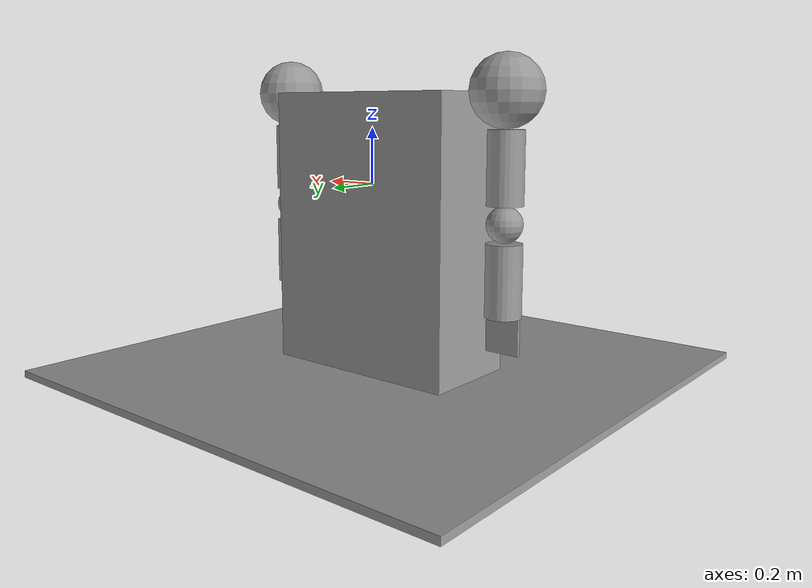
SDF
<?xml version='1.0'?>
<sdf version='1.6'>
  <model name='ryan_arms'>
    <link name='link_31'>
      <inertial>
        <mass>100</mass>
        <inertia>
          <ixx>16.6667</ixx>
          <ixy>0</ixy>
          <ixz>0</ixz>
          <iyy>16.6667</iyy>
          <iyz>0</iyz>
          <izz>16.6667</izz>
        </inertia>
        <pose frame=''>0 0 0 0 -0 0</pose>
      </inertial>
      <pose frame=''>-0.391114 0.378827 -0.495833 0 -0 0</pose>
      <gravity>1</gravity>
      <self_collide>0</self_collide>
      <kinematic>0</kinematic>
      <enable_wind>0</enable_wind>
      <visual name='visual'>
        <pose frame=''>0 0 0 0 -0 0</pose>
        <geometry>
          <box>
            <size>1.5 1.5 0.02</size>
          </box>
        </geometry>
        <material>
          <lighting>1</lighting>
          <script>
            <uri>file://media/materials/scripts/gazebo.material</uri>
            <name>Gazebo/Grey</name>
          </script>
          <shader type='pixel'>
            <normal_map>__default__</normal_map>
          </shader>
          <ambient>0.3 0.3 0.3 1</ambient>
          <diffuse>0.7 0.7 0.7 1</diffuse>
          <specular>0.01 0.01 0.01 1</specular>
          <emissive>0 0 0 1</emissive>
        </material>
        <transparency>0</transparency>
        <cast_shadows>1</cast_shadows>
      </visual>
      <collision name='collision'>
        <laser_retro>0</laser_retro>
        <max_contacts>10</max_contacts>
        <pose frame=''>0 0 0 0 -0 0</pose>
        <geometry>
          <box>
            <size>1.5 1.5 0.02</size>
          </box>
        </geometry>
        <surface>
          <friction>
            <ode>
              <mu>1</mu>
              <mu2>1</mu2>
              <fdir1>0 0 0</fdir1>
              <slip1>0</slip1>
              <slip2>0</slip2>
            </ode>
            <torsional>
              <coefficient>1</coefficient>
              <patch_radius>0</patch_radius>
              <surface_radius>0</surface_radius>
              <use_patch_radius>1</use_patch_radius>
              <ode>
                <slip>0</slip>
              </ode>
            </torsional>
          </friction>
          <bounce>
            <restitution_coefficient>0</restitution_coefficient>
            <threshold>1e+06</threshold>
          </bounce>
          <contact>
            <collide_without_contact>0</collide_without_contact>
            <collide_without_contact_bitmask>1</collide_without_contact_bitmask>
            <collide_bitmask>1</collide_bitmask>
            <ode>
              <soft_cfm>0</soft_cfm>
              <soft_erp>0.2</soft_erp>
              <kp>1e+13</kp>
              <kd>1</kd>
              <max_vel>0.01</max_vel>
              <min_depth>0</min_depth>
            </ode>
            <bullet>
              <split_impulse>1</split_impulse>
              <split_impulse_penetration_threshold>-0.01</split_impulse_penetration_threshold>
              <soft_cfm>0</soft_cfm>
              <soft_erp>0.2</soft_erp>
              <kp>1e+13</kp>
              <kd>1</kd>
            </bullet>
          </contact>
        </surface>
      </collision>
    </link>
    <link name='link_32'>
      <inertial>
        <mass>1</mass>
        <inertia>
          <ixx>0.166667</ixx>
          <ixy>0</ixy>
          <ixz>0</ixz>
          <iyy>0.166667</iyy>
          <iyz>0</iyz>
          <izz>0.166667</izz>
        </inertia>
        <pose frame=''>0 0 0 0 -0 0</pose>
      </inertial>
      <pose frame=''>-0.391114 0.378827 -0.085833 0 -0 0</pose>
      <gravity>1</gravity>
      <self_collide>0</self_collide>
      <kinematic>0</kinematic>
      <enable_wind>0</enable_wind>
      <visual name='visual'>
        <pose frame=''>0 0 0 0 -0 0</pose>
        <geometry>
          <box>
            <size>0.6 0.3 0.8</size>
          </box>
        </geometry>
        <material>
          <lighting>1</lighting>
          <script>
            <uri>file://media/materials/scripts/gazebo.material</uri>
            <name>Gazebo/Grey</name>
          </script>
          <shader type='pixel'>
            <normal_map>__default__</normal_map>
          </shader>
          <ambient>0.3 0.3 0.3 1</ambient>
          <diffuse>0.7 0.7 0.7 1</diffuse>
          <specular>0.01 0.01 0.01 1</specular>
          <emissive>0 0 0 1</emissive>
        </material>
        <transparency>0</transparency>
        <cast_shadows>1</cast_shadows>
      </visual>
      <collision name='collision'>
        <laser_retro>0</laser_retro>
        <max_contacts>10</max_contacts>
        <pose frame=''>0 0 0 0 -0 0</pose>
        <geometry>
          <box>
            <size>0.6 0.3 0.8</size>
          </box>
        </geometry>
        <surface>
          <friction>
            <ode>
              <mu>1</mu>
              <mu2>1</mu2>
              <fdir1>0 0 0</fdir1>
              <slip1>0</slip1>
              <slip2>0</slip2>
            </ode>
            <torsional>
              <coefficient>1</coefficient>
              <patch_radius>0</patch_radius>
              <surface_radius>0</surface_radius>
              <use_patch_radius>1</use_patch_radius>
              <ode>
                <slip>0</slip>
              </ode>
            </torsional>
          </friction>
          <bounce>
            <restitution_coefficient>0</restitution_coefficient>
            <threshold>1e+06</threshold>
          </bounce>
          <contact>
            <collide_without_contact>0</collide_without_contact>
            <collide_without_contact_bitmask>1</collide_without_contact_bitmask>
            <collide_bitmask>1</collide_bitmask>
            <ode>
              <soft_cfm>0</soft_cfm>
              <soft_erp>0.2</soft_erp>
              <kp>1e+13</kp>
              <kd>1</kd>
              <max_vel>0.01</max_vel>
              <min_depth>0</min_depth>
            </ode>
            <bullet>
              <split_impulse>1</split_impulse>
              <split_impulse_penetration_threshold>-0.01</split_impulse_penetration_threshold>
              <soft_cfm>0</soft_cfm>
              <soft_erp>0.2</soft_erp>
              <kp>1e+13</kp>
              <kd>1</kd>
            </bullet>
          </contact>
        </surface>
      </collision>
    </link>
    <link name='link_33'>
      <inertial>
        <mass>1</mass>
        <inertia>
          <ixx>0.1</ixx>
          <ixy>0</ixy>
          <ixz>0</ixz>
          <iyy>0.1</iyy>
          <iyz>0</iyz>
          <izz>0.1</izz>
        </inertia>
        <pose frame=''>0 0 0 0 -0 0</pose>
      </inertial>
      <pose frame=''>0.008886 0.378827 0.314167 0 -0 0</pose>
      <gravity>1</gravity>
      <self_collide>0</self_collide>
      <kinematic>0</kinematic>
      <enable_wind>0</enable_wind>
      <visual name='visual'>
        <pose frame=''>0 0 0 0 -0 0</pose>
        <geometry>
          <sphere>
            <radius>0.1</radius>
          </sphere>
        </geometry>
        <material>
          <lighting>1</lighting>
          <script>
            <uri>file://media/materials/scripts/gazebo.material</uri>
            <name>Gazebo/Grey</name>
          </script>
          <shader type='pixel'>
            <normal_map>__default__</normal_map>
          </shader>
          <ambient>0.3 0.3 0.3 1</ambient>
          <diffuse>0.7 0.7 0.7 1</diffuse>
          <specular>0.01 0.01 0.01 1</specular>
          <emissive>0 0 0 1</emissive>
        </material>
        <transparency>0</transparency>
        <cast_shadows>1</cast_shadows>
      </visual>
      <collision name='collision'>
        <laser_retro>0</laser_retro>
        <max_contacts>10</max_contacts>
        <pose frame=''>0 0 0 0 -0 0</pose>
        <geometry>
          <sphere>
            <radius>0.1</radius>
          </sphere>
        </geometry>
        <surface>
          <friction>
            <ode>
              <mu>1</mu>
              <mu2>1</mu2>
              <fdir1>0 0 0</fdir1>
              <slip1>0</slip1>
              <slip2>0</slip2>
            </ode>
            <torsional>
              <coefficient>1</coefficient>
              <patch_radius>0</patch_radius>
              <surface_radius>0</surface_radius>
              <use_patch_radius>1</use_patch_radius>
              <ode>
                <slip>0</slip>
              </ode>
            </torsional>
          </friction>
          <bounce>
            <restitution_coefficient>0</restitution_coefficient>
            <threshold>1e+06</threshold>
          </bounce>
          <contact>
            <collide_without_contact>0</collide_without_contact>
            <collide_without_contact_bitmask>1</collide_without_contact_bitmask>
            <collide_bitmask>1</collide_bitmask>
            <ode>
              <soft_cfm>0</soft_cfm>
              <soft_erp>0.2</soft_erp>
              <kp>1e+13</kp>
              <kd>1</kd>
              <max_vel>0.01</max_vel>
              <min_depth>0</min_depth>
            </ode>
            <bullet>
              <split_impulse>1</split_impulse>
              <split_impulse_penetration_threshold>-0.01</split_impulse_penetration_threshold>
              <soft_cfm>0</soft_cfm>
              <soft_erp>0.2</soft_erp>
              <kp>1e+13</kp>
              <kd>1</kd>
            </bullet>
          </contact>
        </surface>
      </collision>
    </link>
    <link name='link_33_clone'>
      <inertial>
        <mass>1</mass>
        <inertia>
          <ixx>0.1</ixx>
          <ixy>0</ixy>
          <ixz>0</ixz>
          <iyy>0.1</iyy>
          <iyz>0</iyz>
          <izz>0.1</izz>
        </inertia>
        <pose frame=''>0 0 0 0 -0 0</pose>
      </inertial>
      <pose frame=''>-0.791114 0.378827 0.314167 0 -0 0</pose>
      <gravity>1</gravity>
      <self_collide>0</self_collide>
      <kinematic>0</kinematic>
      <enable_wind>0</enable_wind>
      <visual name='visual'>
        <pose frame=''>0 0 0 0 -0 0</pose>
        <geometry>
          <sphere>
            <radius>0.1</radius>
          </sphere>
        </geometry>
        <material>
          <lighting>1</lighting>
          <script>
            <uri>file://media/materials/scripts/gazebo.material</uri>
            <name>Gazebo/Grey</name>
          </script>
          <shader type='pixel'>
            <normal_map>__default__</normal_map>
          </shader>
          <ambient>0.3 0.3 0.3 1</ambient>
          <diffuse>0.7 0.7 0.7 1</diffuse>
          <specular>0.01 0.01 0.01 1</specular>
          <emissive>0 0 0 1</emissive>
        </material>
        <transparency>0</transparency>
        <cast_shadows>1</cast_shadows>
      </visual>
      <collision name='collision'>
        <laser_retro>0</laser_retro>
        <max_contacts>10</max_contacts>
        <pose frame=''>0 0 0 0 -0 0</pose>
        <geometry>
          <sphere>
            <radius>0.1</radius>
          </sphere>
        </geometry>
        <surface>
          <friction>
            <ode>
              <mu>1</mu>
              <mu2>1</mu2>
              <fdir1>0 0 0</fdir1>
              <slip1>0</slip1>
              <slip2>0</slip2>
            </ode>
            <torsional>
              <coefficient>1</coefficient>
              <patch_radius>0</patch_radius>
              <surface_radius>0</surface_radius>
              <use_patch_radius>1</use_patch_radius>
              <ode>
                <slip>0</slip>
              </ode>
            </torsional>
          </friction>
          <bounce>
            <restitution_coefficient>0</restitution_coefficient>
            <threshold>1e+06</threshold>
          </bounce>
          <contact>
            <collide_without_contact>0</collide_without_contact>
            <collide_without_contact_bitmask>1</collide_without_contact_bitmask>
            <collide_bitmask>1</collide_bitmask>
            <ode>
              <soft_cfm>0</soft_cfm>
              <soft_erp>0.2</soft_erp>
              <kp>1e+13</kp>
              <kd>1</kd>
              <max_vel>0.01</max_vel>
              <min_depth>0</min_depth>
            </ode>
            <bullet>
              <split_impulse>1</split_impulse>
              <split_impulse_penetration_threshold>-0.01</split_impulse_penetration_threshold>
              <soft_cfm>0</soft_cfm>
              <soft_erp>0.2</soft_erp>
              <kp>1e+13</kp>
              <kd>1</kd>
            </bullet>
          </contact>
        </surface>
      </collision>
    </link>
    <link name='link_34'>
      <inertial>
        <mass>1</mass>
        <inertia>
          <ixx>0.145833</ixx>
          <ixy>0</ixy>
          <ixz>0</ixz>
          <iyy>0.145833</iyy>
          <iyz>0</iyz>
          <izz>0.125</izz>
        </inertia>
        <pose frame=''>0 0 0 0 -0 0</pose>
      </inertial>
      <pose frame=''>0.008886 0.378827 0.314167 0 -0 0</pose>
      <gravity>1</gravity>
      <self_collide>0</self_collide>
      <kinematic>0</kinematic>
      <enable_wind>0</enable_wind>
      <visual name='visual'>
        <pose frame=''>0 0 -0.2 0 -0 0</pose>
        <geometry>
          <cylinder>
            <radius>0.05</radius>
            <length>0.2</length>
          </cylinder>
        </geometry>
        <material>
          <lighting>1</lighting>
          <script>
            <uri>file://media/materials/scripts/gazebo.material</uri>
            <name>Gazebo/Grey</name>
          </script>
          <shader type='pixel'>
            <normal_map>__default__</normal_map>
          </shader>
          <ambient>0.3 0.3 0.3 1</ambient>
          <diffuse>0.7 0.7 0.7 1</diffuse>
          <specular>0.01 0.01 0.01 1</specular>
          <emissive>0 0 0 1</emissive>
        </material>
        <transparency>0</transparency>
        <cast_shadows>1</cast_shadows>
      </visual>
      <collision name='collision'>
        <laser_retro>0</laser_retro>
        <max_contacts>10</max_contacts>
        <pose frame=''>0 0 -0.2 0 -0 0</pose>
        <geometry>
          <cylinder>
            <radius>0.05</radius>
            <length>0.2</length>
          </cylinder>
        </geometry>
        <surface>
          <friction>
            <ode>
              <mu>1</mu>
              <mu2>1</mu2>
              <fdir1>0 0 0</fdir1>
              <slip1>0</slip1>
              <slip2>0</slip2>
            </ode>
            <torsional>
              <coefficient>1</coefficient>
              <patch_radius>0</patch_radius>
              <surface_radius>0</surface_radius>
              <use_patch_radius>1</use_patch_radius>
              <ode>
                <slip>0</slip>
              </ode>
            </torsional>
          </friction>
          <bounce>
            <restitution_coefficient>0</restitution_coefficient>
            <threshold>1e+06</threshold>
          </bounce>
          <contact>
            <collide_without_contact>0</collide_without_contact>
            <collide_without_contact_bitmask>1</collide_without_contact_bitmask>
            <collide_bitmask>1</collide_bitmask>
            <ode>
              <soft_cfm>0</soft_cfm>
              <soft_erp>0.2</soft_erp>
              <kp>1e+13</kp>
              <kd>1</kd>
              <max_vel>0.01</max_vel>
              <min_depth>0</min_depth>
            </ode>
            <bullet>
              <split_impulse>1</split_impulse>
              <split_impulse_penetration_threshold>-0.01</split_impulse_penetration_threshold>
              <soft_cfm>0</soft_cfm>
              <soft_erp>0.2</soft_erp>
              <kp>1e+13</kp>
              <kd>1</kd>
            </bullet>
          </contact>
        </surface>
      </collision>
    </link>
    <link name='link_34_clone'>
      <inertial>
        <mass>1</mass>
        <inertia>
          <ixx>0.145833</ixx>
          <ixy>0</ixy>
          <ixz>0</ixz>
          <iyy>0.145833</iyy>
          <iyz>0</iyz>
          <izz>0.125</izz>
        </inertia>
        <pose frame=''>0 0 0 0 -0 0</pose>
      </inertial>
      <pose frame=''>-0.791114 0.378827 0.314167 0 -0 0</pose>
      <gravity>1</gravity>
      <self_collide>0</self_collide>
      <kinematic>0</kinematic>
      <enable_wind>0</enable_wind>
      <visual name='visual'>
        <pose frame=''>0 0 -0.2 0 -0 0</pose>
        <geometry>
          <cylinder>
            <radius>0.05</radius>
            <length>0.2</length>
          </cylinder>
        </geometry>
        <material>
          <lighting>1</lighting>
          <script>
            <uri>file://media/materials/scripts/gazebo.material</uri>
            <name>Gazebo/Grey</name>
          </script>
          <shader type='pixel'>
            <normal_map>__default__</normal_map>
          </shader>
          <ambient>0.3 0.3 0.3 1</ambient>
          <diffuse>0.7 0.7 0.7 1</diffuse>
          <specular>0.01 0.01 0.01 1</specular>
          <emissive>0 0 0 1</emissive>
        </material>
        <transparency>0</transparency>
        <cast_shadows>1</cast_shadows>
      </visual>
      <collision name='collision'>
        <laser_retro>0</laser_retro>
        <max_contacts>10</max_contacts>
        <pose frame=''>0 0 -0.2 0 -0 0</pose>
        <geometry>
          <cylinder>
            <radius>0.05</radius>
            <length>0.2</length>
          </cylinder>
        </geometry>
        <surface>
          <friction>
            <ode>
              <mu>1</mu>
              <mu2>1</mu2>
              <fdir1>0 0 0</fdir1>
              <slip1>0</slip1>
              <slip2>0</slip2>
            </ode>
            <torsional>
              <coefficient>1</coefficient>
              <patch_radius>0</patch_radius>
              <surface_radius>0</surface_radius>
              <use_patch_radius>1</use_patch_radius>
              <ode>
                <slip>0</slip>
              </ode>
            </torsional>
          </friction>
          <bounce>
            <restitution_coefficient>0</restitution_coefficient>
            <threshold>1e+06</threshold>
          </bounce>
          <contact>
            <collide_without_contact>0</collide_without_contact>
            <collide_without_contact_bitmask>1</collide_without_contact_bitmask>
            <collide_bitmask>1</collide_bitmask>
            <ode>
              <soft_cfm>0</soft_cfm>
              <soft_erp>0.2</soft_erp>
              <kp>1e+13</kp>
              <kd>1</kd>
              <max_vel>0.01</max_vel>
              <min_depth>0</min_depth>
            </ode>
            <bullet>
              <split_impulse>1</split_impulse>
              <split_impulse_penetration_threshold>-0.01</split_impulse_penetration_threshold>
              <soft_cfm>0</soft_cfm>
              <soft_erp>0.2</soft_erp>
              <kp>1e+13</kp>
              <kd>1</kd>
            </bullet>
          </contact>
        </surface>
      </collision>
    </link>
    <link name='link_35'>
      <inertial>
        <mass>1</mass>
        <inertia>
          <ixx>0.1</ixx>
          <ixy>0</ixy>
          <ixz>0</ixz>
          <iyy>0.1</iyy>
          <iyz>0</iyz>
          <izz>0.1</izz>
        </inertia>
        <pose frame=''>0 0 0 0 -0 0</pose>
      </inertial>
      <pose frame=''>0.008886 0.378827 -0.035833 0 -0 0</pose>
      <gravity>1</gravity>
      <self_collide>0</self_collide>
      <kinematic>0</kinematic>
      <enable_wind>0</enable_wind>
      <visual name='visual'>
        <pose frame=''>0 0 0 0 -0 0</pose>
        <geometry>
          <sphere>
            <radius>0.05</radius>
          </sphere>
        </geometry>
        <material>
          <lighting>1</lighting>
          <script>
            <uri>file://media/materials/scripts/gazebo.material</uri>
            <name>Gazebo/Grey</name>
          </script>
          <shader type='pixel'>
            <normal_map>__default__</normal_map>
          </shader>
          <ambient>0.3 0.3 0.3 1</ambient>
          <diffuse>0.7 0.7 0.7 1</diffuse>
          <specular>0.01 0.01 0.01 1</specular>
          <emissive>0 0 0 1</emissive>
        </material>
        <transparency>0</transparency>
        <cast_shadows>1</cast_shadows>
      </visual>
      <collision name='collision'>
        <laser_retro>0</laser_retro>
        <max_contacts>10</max_contacts>
        <pose frame=''>0 0 0 0 -0 0</pose>
        <geometry>
          <sphere>
            <radius>0.05</radius>
          </sphere>
        </geometry>
        <surface>
          <friction>
            <ode>
              <mu>1</mu>
              <mu2>1</mu2>
              <fdir1>0 0 0</fdir1>
              <slip1>0</slip1>
              <slip2>0</slip2>
            </ode>
            <torsional>
              <coefficient>1</coefficient>
              <patch_radius>0</patch_radius>
              <surface_radius>0</surface_radius>
              <use_patch_radius>1</use_patch_radius>
              <ode>
                <slip>0</slip>
              </ode>
            </torsional>
          </friction>
          <bounce>
            <restitution_coefficient>0</restitution_coefficient>
            <threshold>1e+06</threshold>
          </bounce>
          <contact>
            <collide_without_contact>0</collide_without_contact>
            <collide_without_contact_bitmask>1</collide_without_contact_bitmask>
            <collide_bitmask>1</collide_bitmask>
            <ode>
              <soft_cfm>0</soft_cfm>
              <soft_erp>0.2</soft_erp>
              <kp>1e+13</kp>
              <kd>1</kd>
              <max_vel>0.01</max_vel>
              <min_depth>0</min_depth>
            </ode>
            <bullet>
              <split_impulse>1</split_impulse>
              <split_impulse_penetration_threshold>-0.01</split_impulse_penetration_threshold>
              <soft_cfm>0</soft_cfm>
              <soft_erp>0.2</soft_erp>
              <kp>1e+13</kp>
              <kd>1</kd>
            </bullet>
          </contact>
        </surface>
      </collision>
    </link>
    <link name='link_35_clone'>
      <inertial>
        <mass>1</mass>
        <inertia>
          <ixx>0.1</ixx>
          <ixy>0</ixy>
          <ixz>0</ixz>
          <iyy>0.1</iyy>
          <iyz>0</iyz>
          <izz>0.1</izz>
        </inertia>
        <pose frame=''>0 0 0 0 -0 0</pose>
      </inertial>
      <pose frame=''>-0.791114 0.378827 -0.035833 0 -0 0</pose>
      <gravity>1</gravity>
      <self_collide>0</self_collide>
      <kinematic>0</kinematic>
      <enable_wind>0</enable_wind>
      <visual name='visual'>
        <pose frame=''>0 0 0 0 -0 0</pose>
        <geometry>
          <sphere>
            <radius>0.05</radius>
          </sphere>
        </geometry>
        <material>
          <lighting>1</lighting>
          <script>
            <uri>file://media/materials/scripts/gazebo.material</uri>
            <name>Gazebo/Grey</name>
          </script>
          <shader type='pixel'>
            <normal_map>__default__</normal_map>
          </shader>
          <ambient>0.3 0.3 0.3 1</ambient>
          <diffuse>0.7 0.7 0.7 1</diffuse>
          <specular>0.01 0.01 0.01 1</specular>
          <emissive>0 0 0 1</emissive>
        </material>
        <transparency>0</transparency>
        <cast_shadows>1</cast_shadows>
      </visual>
      <collision name='collision'>
        <laser_retro>0</laser_retro>
        <max_contacts>10</max_contacts>
        <pose frame=''>0 0 0 0 -0 0</pose>
        <geometry>
          <sphere>
            <radius>0.05</radius>
          </sphere>
        </geometry>
        <surface>
          <friction>
            <ode>
              <mu>1</mu>
              <mu2>1</mu2>
              <fdir1>0 0 0</fdir1>
              <slip1>0</slip1>
              <slip2>0</slip2>
            </ode>
            <torsional>
              <coefficient>1</coefficient>
              <patch_radius>0</patch_radius>
              <surface_radius>0</surface_radius>
              <use_patch_radius>1</use_patch_radius>
              <ode>
                <slip>0</slip>
              </ode>
            </torsional>
          </friction>
          <bounce>
            <restitution_coefficient>0</restitution_coefficient>
            <threshold>1e+06</threshold>
          </bounce>
          <contact>
            <collide_without_contact>0</collide_without_contact>
            <collide_without_contact_bitmask>1</collide_without_contact_bitmask>
            <collide_bitmask>1</collide_bitmask>
            <ode>
              <soft_cfm>0</soft_cfm>
              <soft_erp>0.2</soft_erp>
              <kp>1e+13</kp>
              <kd>1</kd>
              <max_vel>0.01</max_vel>
              <min_depth>0</min_depth>
            </ode>
            <bullet>
              <split_impulse>1</split_impulse>
              <split_impulse_penetration_threshold>-0.01</split_impulse_penetration_threshold>
              <soft_cfm>0</soft_cfm>
              <soft_erp>0.2</soft_erp>
              <kp>1e+13</kp>
              <kd>1</kd>
            </bullet>
          </contact>
        </surface>
      </collision>
    </link>
    <link name='link_36'>
      <inertial>
        <mass>1</mass>
        <inertia>
          <ixx>0.145833</ixx>
          <ixy>0</ixy>
          <ixz>0</ixz>
          <iyy>0.145833</iyy>
          <iyz>0</iyz>
          <izz>0.125</izz>
        </inertia>
        <pose frame=''>0 0 0 0 -0 0</pose>
      </inertial>
      <pose frame=''>0.008886 0.378827 -0.035833 0 -0 0</pose>
      <gravity>1</gravity>
      <self_collide>0</self_collide>
      <kinematic>0</kinematic>
      <enable_wind>0</enable_wind>
      <visual name='visual'>
        <pose frame=''>0 0 -0.15 0 -0 0</pose>
        <geometry>
          <cylinder>
            <radius>0.05</radius>
            <length>0.2</length>
          </cylinder>
        </geometry>
        <material>
          <lighting>1</lighting>
          <script>
            <uri>file://media/materials/scripts/gazebo.material</uri>
            <name>Gazebo/Grey</name>
          </script>
          <shader type='pixel'>
            <normal_map>__default__</normal_map>
          </shader>
          <ambient>0.3 0.3 0.3 1</ambient>
          <diffuse>0.7 0.7 0.7 1</diffuse>
          <specular>0.01 0.01 0.01 1</specular>
          <emissive>0 0 0 1</emissive>
        </material>
        <transparency>0</transparency>
        <cast_shadows>1</cast_shadows>
      </visual>
      <collision name='collision'>
        <laser_retro>0</laser_retro>
        <max_contacts>10</max_contacts>
        <pose frame=''>0 0 -0.15 0 -0 0</pose>
        <geometry>
          <cylinder>
            <radius>0.05</radius>
            <length>0.2</length>
          </cylinder>
        </geometry>
        <surface>
          <friction>
            <ode>
              <mu>1</mu>
              <mu2>1</mu2>
              <fdir1>0 0 0</fdir1>
              <slip1>0</slip1>
              <slip2>0</slip2>
            </ode>
            <torsional>
              <coefficient>1</coefficient>
              <patch_radius>0</patch_radius>
              <surface_radius>0</surface_radius>
              <use_patch_radius>1</use_patch_radius>
              <ode>
                <slip>0</slip>
              </ode>
            </torsional>
          </friction>
          <bounce>
            <restitution_coefficient>0</restitution_coefficient>
            <threshold>1e+06</threshold>
          </bounce>
          <contact>
            <collide_without_contact>0</collide_without_contact>
            <collide_without_contact_bitmask>1</collide_without_contact_bitmask>
            <collide_bitmask>1</collide_bitmask>
            <ode>
              <soft_cfm>0</soft_cfm>
              <soft_erp>0.2</soft_erp>
              <kp>1e+13</kp>
              <kd>1</kd>
              <max_vel>0.01</max_vel>
              <min_depth>0</min_depth>
            </ode>
            <bullet>
              <split_impulse>1</split_impulse>
              <split_impulse_penetration_threshold>-0.01</split_impulse_penetration_threshold>
              <soft_cfm>0</soft_cfm>
              <soft_erp>0.2</soft_erp>
              <kp>1e+13</kp>
              <kd>1</kd>
            </bullet>
          </contact>
        </surface>
      </collision>
    </link>
    <link name='link_36_clone'>
      <inertial>
        <mass>1</mass>
        <inertia>
          <ixx>0.145833</ixx>
          <ixy>0</ixy>
          <ixz>0</ixz>
          <iyy>0.145833</iyy>
          <iyz>0</iyz>
          <izz>0.125</izz>
        </inertia>
        <pose frame=''>0 0 0 0 -0 0</pose>
      </inertial>
      <pose frame=''>-0.791114 0.378827 -0.035833 0 -0 0</pose>
      <gravity>1</gravity>
      <self_collide>0</self_collide>
      <kinematic>0</kinematic>
      <enable_wind>0</enable_wind>
      <visual name='visual'>
        <pose frame=''>0 0 -0.15 0 -0 0</pose>
        <geometry>
          <cylinder>
            <radius>0.05</radius>
            <length>0.2</length>
          </cylinder>
        </geometry>
        <material>
          <lighting>1</lighting>
          <script>
            <uri>file://media/materials/scripts/gazebo.material</uri>
            <name>Gazebo/Grey</name>
          </script>
          <shader type='pixel'>
            <normal_map>__default__</normal_map>
          </shader>
          <ambient>0.3 0.3 0.3 1</ambient>
          <diffuse>0.7 0.7 0.7 1</diffuse>
          <specular>0.01 0.01 0.01 1</specular>
          <emissive>0 0 0 1</emissive>
        </material>
        <transparency>0</transparency>
        <cast_shadows>1</cast_shadows>
      </visual>
      <collision name='collision'>
        <laser_retro>0</laser_retro>
        <max_contacts>10</max_contacts>
        <pose frame=''>0 0 -0.15 0 -0 0</pose>
        <geometry>
          <cylinder>
            <radius>0.05</radius>
            <length>0.2</length>
          </cylinder>
        </geometry>
        <surface>
          <friction>
            <ode>
              <mu>1</mu>
              <mu2>1</mu2>
              <fdir1>0 0 0</fdir1>
              <slip1>0</slip1>
              <slip2>0</slip2>
            </ode>
            <torsional>
              <coefficient>1</coefficient>
              <patch_radius>0</patch_radius>
              <surface_radius>0</surface_radius>
              <use_patch_radius>1</use_patch_radius>
              <ode>
                <slip>0</slip>
              </ode>
            </torsional>
          </friction>
          <bounce>
            <restitution_coefficient>0</restitution_coefficient>
            <threshold>1e+06</threshold>
          </bounce>
          <contact>
            <collide_without_contact>0</collide_without_contact>
            <collide_without_contact_bitmask>1</collide_without_contact_bitmask>
            <collide_bitmask>1</collide_bitmask>
            <ode>
              <soft_cfm>0</soft_cfm>
              <soft_erp>0.2</soft_erp>
              <kp>1e+13</kp>
              <kd>1</kd>
              <max_vel>0.01</max_vel>
              <min_depth>0</min_depth>
            </ode>
            <bullet>
              <split_impulse>1</split_impulse>
              <split_impulse_penetration_threshold>-0.01</split_impulse_penetration_threshold>
              <soft_cfm>0</soft_cfm>
              <soft_erp>0.2</soft_erp>
              <kp>1e+13</kp>
              <kd>1</kd>
            </bullet>
          </contact>
        </surface>
      </collision>
    </link>
    <link name='link_37'>
      <inertial>
        <mass>1</mass>
        <inertia>
          <ixx>0.166667</ixx>
          <ixy>0</ixy>
          <ixz>0</ixz>
          <iyy>0.166667</iyy>
          <iyz>0</iyz>
          <izz>0.166667</izz>
        </inertia>
        <pose frame=''>0 0 0 0 -0 0</pose>
      </inertial>
      <pose frame=''>0.008886 0.378827 -0.285833 0 -0 0</pose>
      <gravity>1</gravity>
      <self_collide>0</self_collide>
      <kinematic>0</kinematic>
      <enable_wind>0</enable_wind>
      <visual name='visual'>
        <pose frame=''>0 0 -0.05 0 -0 0</pose>
        <geometry>
          <box>
            <size>0.1 0.01 0.1</size>
          </box>
        </geometry>
        <material>
          <lighting>1</lighting>
          <script>
            <uri>file://media/materials/scripts/gazebo.material</uri>
            <name>Gazebo/Grey</name>
          </script>
          <shader type='pixel'>
            <normal_map>__default__</normal_map>
          </shader>
          <ambient>0.3 0.3 0.3 1</ambient>
          <diffuse>0.7 0.7 0.7 1</diffuse>
          <specular>0.01 0.01 0.01 1</specular>
          <emissive>0 0 0 1</emissive>
        </material>
        <transparency>0</transparency>
        <cast_shadows>1</cast_shadows>
      </visual>
      <collision name='collision'>
        <laser_retro>0</laser_retro>
        <max_contacts>10</max_contacts>
        <pose frame=''>0 0 -0.05 0 -0 0</pose>
        <geometry>
          <box>
            <size>0.1 0.01 0.1</size>
          </box>
        </geometry>
        <surface>
          <friction>
            <ode>
              <mu>1</mu>
              <mu2>1</mu2>
              <fdir1>0 0 0</fdir1>
              <slip1>0</slip1>
              <slip2>0</slip2>
            </ode>
            <torsional>
              <coefficient>1</coefficient>
              <patch_radius>0</patch_radius>
              <surface_radius>0</surface_radius>
              <use_patch_radius>1</use_patch_radius>
              <ode>
                <slip>0</slip>
              </ode>
            </torsional>
          </friction>
          <bounce>
            <restitution_coefficient>0</restitution_coefficient>
            <threshold>1e+06</threshold>
          </bounce>
          <contact>
            <collide_without_contact>0</collide_without_contact>
            <collide_without_contact_bitmask>1</collide_without_contact_bitmask>
            <collide_bitmask>1</collide_bitmask>
            <ode>
              <soft_cfm>0</soft_cfm>
              <soft_erp>0.2</soft_erp>
              <kp>1e+13</kp>
              <kd>1</kd>
              <max_vel>0.01</max_vel>
              <min_depth>0</min_depth>
            </ode>
            <bullet>
              <split_impulse>1</split_impulse>
              <split_impulse_penetration_threshold>-0.01</split_impulse_penetration_threshold>
              <soft_cfm>0</soft_cfm>
              <soft_erp>0.2</soft_erp>
              <kp>1e+13</kp>
              <kd>1</kd>
            </bullet>
          </contact>
        </surface>
      </collision>
    </link>
    <link name='link_37_clone'>
      <inertial>
        <mass>1</mass>
        <inertia>
          <ixx>0.166667</ixx>
          <ixy>0</ixy>
          <ixz>0</ixz>
          <iyy>0.166667</iyy>
          <iyz>0</iyz>
          <izz>0.166667</izz>
        </inertia>
        <pose frame=''>0 0 0 0 -0 0</pose>
      </inertial>
      <pose frame=''>-0.791114 0.378827 -0.285833 0 -0 0</pose>
      <gravity>1</gravity>
      <self_collide>0</self_collide>
      <kinematic>0</kinematic>
      <enable_wind>0</enable_wind>
      <visual name='visual'>
        <pose frame=''>0 0 -0.05 0 -0 0</pose>
        <geometry>
          <box>
            <size>0.1 0.01 0.1</size>
          </box>
        </geometry>
        <material>
          <lighting>1</lighting>
          <script>
            <uri>file://media/materials/scripts/gazebo.material</uri>
            <name>Gazebo/Grey</name>
          </script>
          <shader type='pixel'>
            <normal_map>__default__</normal_map>
          </shader>
          <ambient>0.3 0.3 0.3 1</ambient>
          <diffuse>0.7 0.7 0.7 1</diffuse>
          <specular>0.01 0.01 0.01 1</specular>
          <emissive>0 0 0 1</emissive>
        </material>
        <transparency>0</transparency>
        <cast_shadows>1</cast_shadows>
      </visual>
      <collision name='collision'>
        <laser_retro>0</laser_retro>
        <max_contacts>10</max_contacts>
        <pose frame=''>0 0 -0.05 0 -0 0</pose>
        <geometry>
          <box>
            <size>0.1 0.01 0.1</size>
          </box>
        </geometry>
        <surface>
          <friction>
            <ode>
              <mu>1</mu>
              <mu2>1</mu2>
              <fdir1>0 0 0</fdir1>
              <slip1>0</slip1>
              <slip2>0</slip2>
            </ode>
            <torsional>
              <coefficient>1</coefficient>
              <patch_radius>0</patch_radius>
              <surface_radius>0</surface_radius>
              <use_patch_radius>1</use_patch_radius>
              <ode>
                <slip>0</slip>
              </ode>
            </torsional>
          </friction>
          <bounce>
            <restitution_coefficient>0</restitution_coefficient>
            <threshold>1e+06</threshold>
          </bounce>
          <contact>
            <collide_without_contact>0</collide_without_contact>
            <collide_without_contact_bitmask>1</collide_without_contact_bitmask>
            <collide_bitmask>1</collide_bitmask>
            <ode>
              <soft_cfm>0</soft_cfm>
              <soft_erp>0.2</soft_erp>
              <kp>1e+13</kp>
              <kd>1</kd>
              <max_vel>0.01</max_vel>
              <min_depth>0</min_depth>
            </ode>
            <bullet>
              <split_impulse>1</split_impulse>
              <split_impulse_penetration_threshold>-0.01</split_impulse_penetration_threshold>
              <soft_cfm>0</soft_cfm>
              <soft_erp>0.2</soft_erp>
              <kp>1e+13</kp>
              <kd>1</kd>
            </bullet>
          </contact>
        </surface>
      </collision>
    </link>
    <joint name='link_31_JOINT_28' type='fixed'>
      <parent>link_31</parent>
      <child>link_32</child>
      <pose frame=''>0 0 0 0 -0 0</pose>
      <physics>
        <ode>
          <limit>
            <cfm>0</cfm>
            <erp>0.2</erp>
          </limit>
          <suspension>
            <cfm>0</cfm>
            <erp>0.2</erp>
          </suspension>
        </ode>
      </physics>
    </joint>
    <joint name='link_32_JOINT_29' type='revolute'>
      <parent>link_32</parent>
      <child>link_33</child>
      <pose frame=''>0 0 0 0 -0 0</pose>
      <axis>
        <xyz>1 0 0</xyz>
        <use_parent_model_frame>0</use_parent_model_frame>
        <limit>
          <lower>-1.79769e+308</lower>
          <upper>1.79769e+308</upper>
          <effort>-1</effort>
          <velocity>-1</velocity>
        </limit>
        <dynamics>
          <spring_reference>0</spring_reference>
          <spring_stiffness>0</spring_stiffness>
          <damping>0</damping>
        </dynamics>
      </axis>
      <physics>
        <ode>
          <limit>
            <cfm>0</cfm>
            <erp>0.2</erp>
          </limit>
          <suspension>
            <cfm>0</cfm>
            <erp>0.2</erp>
          </suspension>
        </ode>
      </physics>
    </joint>
    <joint name='link_32_JOINT_30' type='revolute'>
      <parent>link_32</parent>
      <child>link_33_clone</child>
      <pose frame=''>0 0 0 0 -0 0</pose>
      <axis>
        <xyz>1 0 0</xyz>
        <use_parent_model_frame>0</use_parent_model_frame>
        <limit>
          <lower>-1.79769e+308</lower>
          <upper>1.79769e+308</upper>
          <effort>-1</effort>
          <velocity>-1</velocity>
        </limit>
        <dynamics>
          <spring_reference>0</spring_reference>
          <spring_stiffness>0</spring_stiffness>
          <damping>0</damping>
        </dynamics>
      </axis>
      <physics>
        <ode>
          <limit>
            <cfm>0</cfm>
            <erp>0.2</erp>
          </limit>
          <suspension>
            <cfm>0</cfm>
            <erp>0.2</erp>
          </suspension>
        </ode>
      </physics>
    </joint>
    <joint name='link_33_JOINT_31' type='revolute'>
      <parent>link_33</parent>
      <child>link_34</child>
      <pose frame=''>0 0 0 0 -0 0</pose>
      <axis>
        <xyz>0 1 0</xyz>
        <use_parent_model_frame>0</use_parent_model_frame>
        <limit>
          <lower>-1.79769e+308</lower>
          <upper>1.79769e+308</upper>
          <effort>-1</effort>
          <velocity>-1</velocity>
        </limit>
        <dynamics>
          <spring_reference>0</spring_reference>
          <spring_stiffness>0</spring_stiffness>
          <damping>0</damping>
        </dynamics>
      </axis>
      <physics>
        <ode>
          <limit>
            <cfm>0</cfm>
            <erp>0.2</erp>
          </limit>
          <suspension>
            <cfm>0</cfm>
            <erp>0.2</erp>
          </suspension>
        </ode>
      </physics>
    </joint>
    <joint name='link_33_clone_JOINT_32' type='revolute'>
      <parent>link_33_clone</parent>
      <child>link_34_clone</child>
      <pose frame=''>0 0 0 0 -0 0</pose>
      <axis>
        <xyz>0 1 0</xyz>
        <use_parent_model_frame>0</use_parent_model_frame>
        <limit>
          <lower>-1.79769e+308</lower>
          <upper>1.79769e+308</upper>
          <effort>-1</effort>
          <velocity>-1</velocity>
        </limit>
        <dynamics>
          <spring_reference>0</spring_reference>
          <spring_stiffness>0</spring_stiffness>
          <damping>0</damping>
        </dynamics>
      </axis>
      <physics>
        <ode>
          <limit>
            <cfm>0</cfm>
            <erp>0.2</erp>
          </limit>
          <suspension>
            <cfm>0</cfm>
            <erp>0.2</erp>
          </suspension>
        </ode>
      </physics>
    </joint>
    <joint name='link_34_JOINT_33' type='revolute'>
      <parent>link_34</parent>
      <child>link_35</child>
      <pose frame=''>0 0 0 0 -0 0</pose>
      <axis>
        <xyz>1 0 0</xyz>
        <use_parent_model_frame>0</use_parent_model_frame>
        <limit>
          <lower>-1.79769e+308</lower>
          <upper>1.79769e+308</upper>
          <effort>-1</effort>
          <velocity>-1</velocity>
        </limit>
        <dynamics>
          <spring_reference>0</spring_reference>
          <spring_stiffness>0</spring_stiffness>
          <damping>0</damping>
        </dynamics>
      </axis>
      <physics>
        <ode>
          <limit>
            <cfm>0</cfm>
            <erp>0.2</erp>
          </limit>
          <suspension>
            <cfm>0</cfm>
            <erp>0.2</erp>
          </suspension>
        </ode>
      </physics>
    </joint>
    <joint name='link_34_clone_JOINT_34' type='revolute'>
      <parent>link_34_clone</parent>
      <child>link_35_clone</child>
      <pose frame=''>0 0 0 0 -0 0</pose>
      <axis>
        <xyz>1 0 0</xyz>
        <use_parent_model_frame>0</use_parent_model_frame>
        <limit>
          <lower>-1.79769e+308</lower>
          <upper>1.79769e+308</upper>
          <effort>-1</effort>
          <velocity>-1</velocity>
        </limit>
        <dynamics>
          <spring_reference>0</spring_reference>
          <spring_stiffness>0</spring_stiffness>
          <damping>0</damping>
        </dynamics>
      </axis>
      <physics>
        <ode>
          <limit>
            <cfm>0</cfm>
            <erp>0.2</erp>
          </limit>
          <suspension>
            <cfm>0</cfm>
            <erp>0.2</erp>
          </suspension>
        </ode>
      </physics>
    </joint>
    <joint name='link_35_JOINT_35' type='revolute'>
      <parent>link_35</parent>
      <child>link_36</child>
      <pose frame=''>0 0 0 0 -0 0</pose>
      <axis>
        <xyz>0 0 1</xyz>
        <use_parent_model_frame>0</use_parent_model_frame>
        <limit>
          <lower>-1.79769e+308</lower>
          <upper>1.79769e+308</upper>
          <effort>-1</effort>
          <velocity>-1</velocity>
        </limit>
        <dynamics>
          <spring_reference>0</spring_reference>
          <spring_stiffness>0</spring_stiffness>
          <damping>0</damping>
        </dynamics>
      </axis>
      <physics>
        <ode>
          <limit>
            <cfm>0</cfm>
            <erp>0.2</erp>
          </limit>
          <suspension>
            <cfm>0</cfm>
            <erp>0.2</erp>
          </suspension>
        </ode>
      </physics>
    </joint>
    <joint name='link_35_clone_JOINT_36' type='revolute'>
      <parent>link_35_clone</parent>
      <child>link_36_clone</child>
      <pose frame=''>0 0 0 0 -0 0</pose>
      <axis>
        <xyz>0 0 1</xyz>
        <use_parent_model_frame>0</use_parent_model_frame>
        <limit>
          <lower>-1.79769e+308</lower>
          <upper>1.79769e+308</upper>
          <effort>-1</effort>
          <velocity>-1</velocity>
        </limit>
        <dynamics>
          <spring_reference>0</spring_reference>
          <spring_stiffness>0</spring_stiffness>
          <damping>0</damping>
        </dynamics>
      </axis>
      <physics>
        <ode>
          <limit>
            <cfm>0</cfm>
            <erp>0.2</erp>
          </limit>
          <suspension>
            <cfm>0</cfm>
            <erp>0.2</erp>
          </suspension>
        </ode>
      </physics>
    </joint>
    <joint name='link_36_JOINT_37' type='fixed'>
      <parent>link_36</parent>
      <child>link_37</child>
      <pose frame=''>0 0 0 0 -0 0</pose>
      <physics>
        <ode>
          <limit>
            <cfm>0</cfm>
            <erp>0.2</erp>
          </limit>
          <suspension>
            <cfm>0</cfm>
            <erp>0.2</erp>
          </suspension>
        </ode>
      </physics>
    </joint>
    <joint name='link_36_clone_JOINT_38' type='fixed'>
      <parent>link_36_clone</parent>
      <child>link_37_clone</child>
      <pose frame=''>0 0 0 0 -0 0</pose>
      <physics>
        <ode>
          <limit>
            <cfm>0</cfm>
            <erp>0.2</erp>
          </limit>
          <suspension>
            <cfm>0</cfm>
            <erp>0.2</erp>
          </suspension>
        </ode>
      </physics>
    </joint>
    <static>0</static>
    <allow_auto_disable>1</allow_auto_disable>
  </model>
</sdf>
